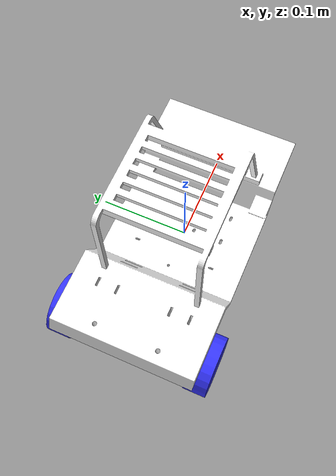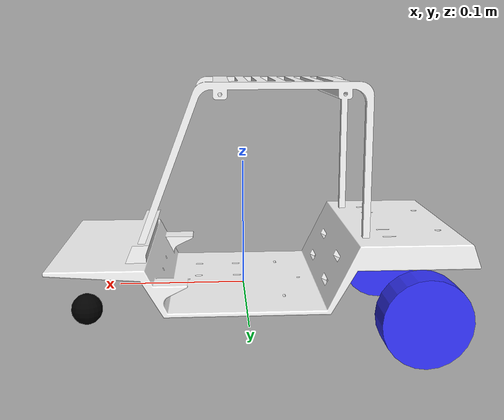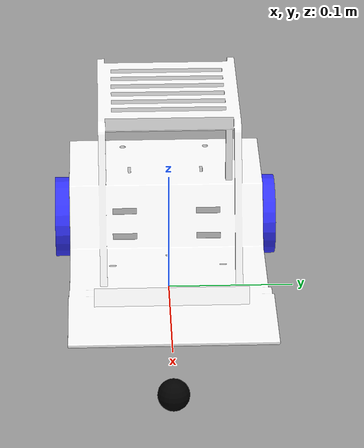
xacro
<?xml version="1.0"?>
<robot xmlns:xacro="http://www.ros.org/wiki/xacro" >

    <xacro:include filename="inertial_macros.xacro"/>

    <material name="white">
        <color rgba="1 1 1 1" />
    </material>

    <material name="orange">
        <color rgba="1 0.3 0.1 1"/>
    </material>

    <material name="blue">
        <color rgba="0.2 0.2 1 1"/>
    </material>

    <material name="black">
        <color rgba="0 0 0 1"/>
    </material>

    <material name="red">
        <color rgba="1 0 0 1"/>
    </material>

    <!-- BASE LINK -->
    <link name="base_link">

    </link>

    <joint name="base_footprint_joint" type="fixed">
        <parent link="base_link"/>
            <child link="base_footprint"/>
            <origin xyz="0 0 0" rpy="0 0 ${pi/2}" />
    </joint>

    <link name="base_footprint">

    </link>

    <!-- CHASSIS LINK -->
    <joint name="chassis_joint" type="fixed">
        <parent link="base_footprint"/>
        <child link="chassis"/>
    </joint>

    <!-- Length= 310mm (approx),
    width= 160mm,
    height= 164mm,
    side panel extrusion= 20mm
    middle length (bottom)= 120mm -->
    <link name="chassis">
        <visual>
            <origin xyz=".060 -0.060 0"/>
            <geometry>
                <mesh filename="file://$(find my_bot)/description/meshes/forklift_chassis.stl" scale=".001 .001 .001"/>
            </geometry>
            <material name="white"/>
        </visual>
        <collision>
            <origin xyz=".060 -0.060 0"/>
            <geometry>
                <mesh filename="file://$(find my_bot)/description/meshes/forklift_chassis.stl" scale=".001 .001 .001 " />
            </geometry>
        </collision>
    </link>

<!-- BACK LEFT WHEEL LINK -->
    <joint name="back_left_wheel_joint" type="fixed">
        <parent link="chassis"/>
        <child link="back_left_wheel"/>
        <origin xyz=".080 ${.168 - .040} -.005" rpy="-${pi/2} 0 -${pi/2}"/>
        <axis xyz="0 0 -1"/>
    </joint>

    <link name="back_left_wheel">
        <visual>
            <geometry>
                <cylinder radius="${.067/2}" length="0.0255"/>
            </geometry>
            <material name="blue"/>
        </visual>
        <collision>
            <geometry>
                <cylinder radius="${.067/2}" length="0.0255"/>
            </geometry>
        </collision>

        <xacro:inertial_cylinder mass="0.04" length="0.0255" radius="${.067/2}">
            <origin xyz="0 0 0" rpy="0 0 0"/>
        </xacro:inertial_cylinder>

    </link>

<!-- BACK RIGHT WHEEL LINK -->
    <joint name="back_right_wheel_joint" type="fixed">
        <parent link="chassis"/>
        <child link="back_right_wheel"/>
        <origin xyz="-.080 ${.168 - .040} -.005" rpy="-${pi/2} 0 ${pi/2}"/>
        <axis xyz="0 0 -1"/>
    </joint>

    <link name="back_right_wheel">
        <visual>
            <geometry>
                <cylinder radius="${.067/2}" length="0.0255"/>
            </geometry>
            <material name="blue"/>
        </visual>
        <collision>
            <geometry>
                <cylinder radius="${.067/2}" length="0.0255"/>
            </geometry>
        </collision>
        <xacro:inertial_cylinder mass="0.04" length="0.0255" radius="${.067/2}">
            <origin xyz="0 0 0" rpy="0 0 0"/>
        </xacro:inertial_cylinder>
    </link>

    <!-- CASTER WHEEL LINK -->
 <joint name="caster_wheel_joint" type="fixed">
        <parent link="chassis"/>
        <child link="caster_wheel"/>
        <origin xyz="0 -${.168 - .040} ${(-.067/2) + 0.0127}"/>
    </joint>

    <link name="caster_wheel">
        <visual>
            <geometry>
                <sphere radius="0.0127"/>
            </geometry>
            <material name="black"/>
        </visual>
        <collision>
            <geometry>
                <sphere radius="0"/>
            </geometry>
        </collision>
        <xacro:inertial_sphere mass="0.1" radius="0.0127">
            <origin xyz="0 0 0" rpy="0 0 0"/>
        </xacro:inertial_sphere>
    </link>

</robot>

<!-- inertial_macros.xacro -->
<robot xmlns:xacro="http://www.ros.org/wiki/xacro" >

    <!-- Specify some standard inertial calculations https://en.wikipedia.org/wiki/List_of_moments_of_inertia -->
    <!-- These make use of xacro's mathematical functionality -->

    <xacro:macro name="inertial_sphere" params="mass radius *origin">
        <inertial>
            <xacro:insert_block name="origin"/>
            <mass value="${mass}" />
            <inertia ixx="${(2/5) * mass * (radius*radius)}" ixy="0.0" ixz="0.0"
                    iyy="${(2/5) * mass * (radius*radius)}" iyz="0.0"
                    izz="${(2/5) * mass * (radius*radius)}" />
        </inertial>
    </xacro:macro>

    <xacro:macro name="inertial_cylinder" params="mass length radius *origin">
        <inertial>
            <xacro:insert_block name="origin"/>
            <mass value="${mass}" />
            <inertia ixx="${(1/12) * mass * (3*radius*radius + length*length)}" ixy="0.0" ixz="0.0"
                    iyy="${(1/12) * mass * (3*radius*radius + length*length)}" iyz="0.0"
                    izz="${(1/2) * mass * (radius*radius)}" />
        </inertial>
    </xacro:macro>
</robot>
